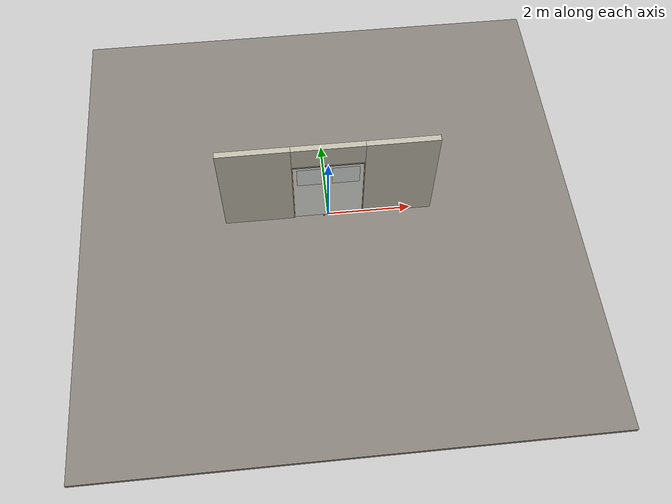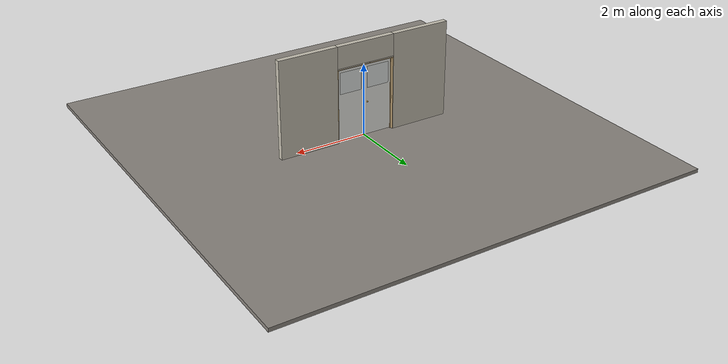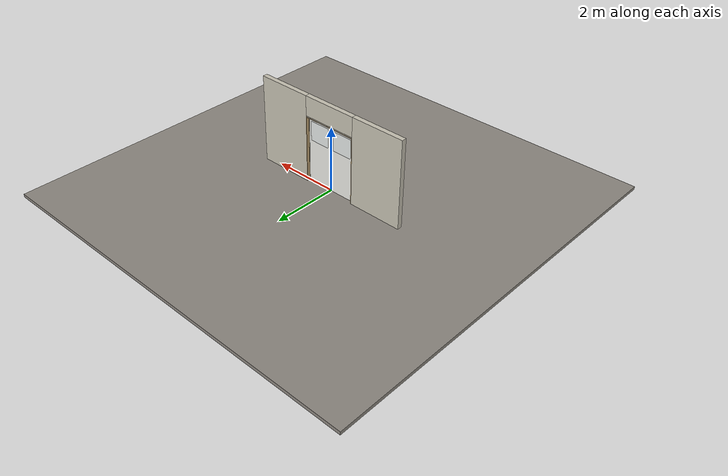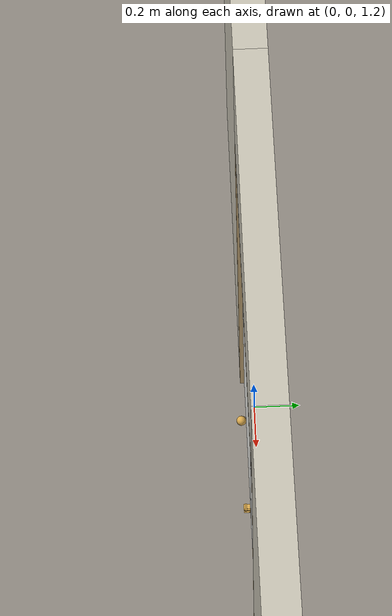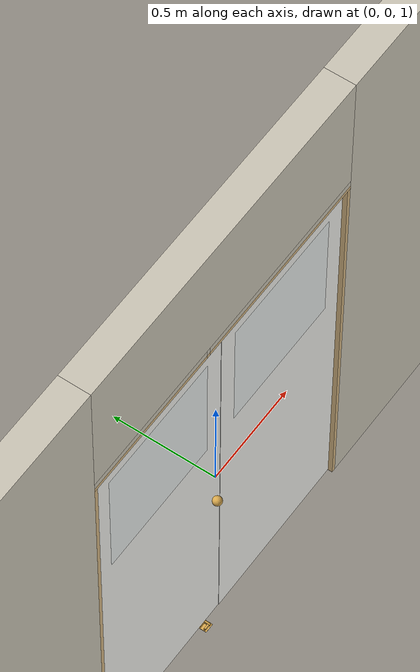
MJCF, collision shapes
<?xml version="1.0" ?>
<mujoco model="db0707_swing_double_minimal">
  <compiler angle="radian" meshdir="../../hardware" texturedir="../../textures" autolimits="true" inertiafromgeom="false"/>
  <option timestep="0.002" integrator="implicitfast" cone="elliptic" impratio="10" noslip_iterations="3">
    <flag multiccd="enable"/>
  </option>
  <size memory="16M"/>
  <default>
    <geom condim="4" solref="0.005 1" solimp="0.95 0.99 0.001"/>
    <joint solreflimit="0.005 1" solimplimit="0.95 0.99 0.001"/>
    <tendon solreflimit="0.005 1"/>
    <equality solref="0.002 1"/>
  </default>
  <visual>
    <headlight ambient="0.4 0.4 0.4" diffuse="0.7 0.7 0.7" specular="0.2 0.2 0.2"/>
    <quality shadowsize="4096"/>
    <map znear="0.01" zfar="60"/>
  </visual>
  <asset>
    <mesh name="knob_9525440cc3" file="knob_9525440cc3.obj"/>
    <material name="mat_floor" rgba="0.55 0.53 0.5 1" specular="0.2" shininess="0.15" reflectance="0"/>
    <material name="mat_wall" rgba="0.78 0.76 0.7 1" specular="0.2" shininess="0.1" reflectance="0"/>
    <material name="mat_leaf_a" rgba="0.93 0.93 0.91 1" specular="0.2" shininess="0.44" reflectance="0"/>
    <material name="mat_glass" rgba="0.85 0.92 0.95 0.25" specular="0.2" shininess="0.95" reflectance="0.1"/>
    <material name="mat_hinge" rgba="0.65 0.66 0.68 1" specular="0.74" shininess="0.5" reflectance="0.36"/>
    <material name="mat_op_brass" rgba="0.85 0.66 0.3 1" specular="0.8" shininess="0.75" reflectance="0.4"/>
    <material name="mat_trim" rgba="0.85 0.66 0.3 1" specular="0.8" shininess="0.75" reflectance="0.4"/>
    <material name="mat_stop" rgba="0.9 0.9 0.92 1" specular="0.8" shininess="0.9" reflectance="0.4"/>
    <material name="mat_leaf_b" rgba="0.93 0.93 0.91 1" specular="0.2" shininess="0.44" reflectance="0"/>
    <material name="mat_frame" rgba="0.82 0.7 0.5 1" specular="0.2" shininess="0.45" reflectance="0"/>
    <texture name="skybox" type="skybox" builtin="gradient" rgb1="0.6 0.7 0.85" rgb2="0.9 0.92 0.95" width="256" height="256"/>
  </asset>
  <worldbody>
    <light name="sun" pos="1.5 -2.5 4" dir="-0.3 0.5 -0.8" directional="true" diffuse="0.8 0.8 0.8" specular="0.3 0.3 0.3" castshadow="true"/>
    <light name="fill" pos="-1.5 2.5 3" dir="0.3 -0.5 -0.7" directional="true" diffuse="0.35 0.35 0.4" castshadow="false"/>
    <camera name="robot_view" pos="0 -2.511687 1.734312" xyaxes="1 0 0 0 0.26963 0.962964" fovy="52"/>
    <camera name="far_view" pos="0 2.572687 1.734312" xyaxes="-1 0 0 0 -0.26963 0.962964" fovy="52"/>
    <camera name="iso" pos="-1.932062 -2.104938 2.141063" xyaxes="0.741536 -0.670913 0 0.242917 0.268487 0.932151" fovy="46"/>
    <camera name="detail_handle" pos="0.1135 -0.857 1.245" xyaxes="0.97561 0.219512 0 -0.070934 0.315262 0.94635" fovy="38"/>
    <geom name="floor" type="box" size="6 6 0.05" pos="0 0 -0.05" material="mat_floor" group="0" contype="1" conaffinity="1" friction="0.8 0.005 0.0001" density="2400"/>
    <geom name="wall_left" type="box" size="0.83175 0.0725 1.35" pos="-1.66825 0.0305 1.35" material="mat_wall" group="0" contype="1" conaffinity="1" friction="0.6 0.005 0.0001" density="800"/>
    <geom name="wall_right" type="box" size="0.83175 0.0725 1.35" pos="1.66825 0.0305 1.35" material="mat_wall" group="0" contype="1" conaffinity="1" friction="0.6 0.005 0.0001" density="800"/>
    <geom name="wall_header" type="box" size="0.8365 0.0725 0.303" pos="0 0.0305 2.397" material="mat_wall" group="0" contype="1" conaffinity="1" friction="0.6 0.005 0.0001" density="800"/>
    <geom name="leaf_a_cremone_floor_strike_plate" type="box" size="0.023 0.023 0.00075" pos="-0.1115 -0.031 0.00075" material="mat_op_brass" group="0" contype="1" conaffinity="1" friction="0.6 0.005 0.0001" density="7850"/>
    <geom name="leaf_a_cremone_floor_strike_p" type="box" size="0.019 0.004 0.00575" pos="-0.1115 -0.019 0.00725" material="mat_op_brass" group="0" contype="1" conaffinity="1" friction="0.6 0.005 0.0001" density="7850"/>
    <geom name="leaf_a_cremone_floor_strike_n" type="box" size="0.019 0.004 0.00575" pos="-0.1115 -0.043 0.00725" material="mat_op_brass" group="0" contype="1" conaffinity="1" friction="0.6 0.005 0.0001" density="7850"/>
    <geom name="leaf_a_cremone_floor_strike_e" type="box" size="0.004 0.019 0.00575" pos="-0.0995 -0.031 0.00725" material="mat_op_brass" group="0" contype="1" conaffinity="1" friction="0.6 0.005 0.0001" density="7850"/>
    <geom name="jamb_l" type="box" size="0.0095 0.0725 1.0225" pos="-0.827 0.0305 1.0225" material="mat_frame" group="0" contype="1" conaffinity="1" friction="0.6 0.005 0.0001" density="300"/>
    <geom name="jamb_r" type="box" size="0.0095 0.0725 1.0225" pos="0.827 0.0305 1.0225" material="mat_frame" group="0" contype="1" conaffinity="1" friction="0.6 0.005 0.0001" density="300"/>
    <geom name="jamb_head_pwall_-111_n" type="box" size="0.01 0.00175 0.0095" pos="-0.1115 -0.04025 2.0545" material="mat_frame" group="0" contype="1" conaffinity="1" friction="0.6 0.005 0.0001" density="300"/>
    <geom name="jamb_head_pwall_-111_p" type="box" size="0.01 0.06325 0.0095" pos="-0.1115 0.03975 2.0545" material="mat_frame" group="0" contype="1" conaffinity="1" friction="0.6 0.005 0.0001" density="300"/>
    <geom name="jamb_head_0" type="box" size="0.3575 0.0725 0.0095" pos="-0.479 0.0305 2.0545" material="mat_frame" group="0" contype="1" conaffinity="1" friction="0.6 0.005 0.0001" density="300"/>
    <geom name="jamb_head_1" type="box" size="0.469 0.0725 0.0095" pos="0.3675 0.0305 2.0545" material="mat_frame" group="0" contype="1" conaffinity="1" friction="0.6 0.005 0.0001" density="300"/>
    <geom name="head_stud_pwall_-111_n" type="box" size="0.01 0.00175 0.015" pos="-0.1115 -0.04025 2.079" material="mat_wall" group="0" contype="1" conaffinity="1" friction="0.6 0.005 0.0001" density="500"/>
    <geom name="head_stud_pwall_-111_p" type="box" size="0.01 0.06325 0.015" pos="-0.1115 0.03975 2.079" material="mat_wall" group="0" contype="1" conaffinity="1" friction="0.6 0.005 0.0001" density="500"/>
    <geom name="head_stud_pback_-111" type="box" size="0.01 0.0075 0.0115" pos="-0.1115 -0.031 2.0825" material="mat_wall" group="0" contype="1" conaffinity="1" friction="0.6 0.005 0.0001" density="500"/>
    <geom name="head_stud_0" type="box" size="0.3575 0.0725 0.015" pos="-0.479 0.0305 2.079" material="mat_wall" group="0" contype="1" conaffinity="1" friction="0.6 0.005 0.0001" density="500"/>
    <geom name="head_stud_1" type="box" size="0.469 0.0725 0.015" pos="0.3675 0.0305 2.079" material="mat_wall" group="0" contype="1" conaffinity="1" friction="0.6 0.005 0.0001" density="500"/>
    <geom name="stop_l" type="box" size="0.015 0.006 1.0225" pos="-0.8025 0.0285 1.0225" material="mat_frame" group="0" contype="1" conaffinity="1" friction="0.6 0.005 0.0001" density="300"/>
    <geom name="stop_r" type="box" size="0.015 0.006 1.0225" pos="0.8025 0.0285 1.0225" material="mat_frame" group="0" contype="1" conaffinity="1" friction="0.6 0.005 0.0001" density="300"/>
    <geom name="stop_head" type="box" size="0.8175 0.006 0.015" pos="0 0.0285 2.03" material="mat_frame" group="0" contype="1" conaffinity="1" friction="0.6 0.005 0.0001" density="300"/>
    <site name="approach_point" pos="0 -1.5 0" quat="1 0 0 0" size="0.05" rgba="0.2 0.9 0.2 0.5" group="4"/>
    <site name="goal_point" pos="0 1.5 0" quat="1 0 0 0" size="0.05" rgba="0.2 0.9 0.2 0.5" group="4"/>
    <site name="door_plane_center" pos="0 0 1.0225" quat="1 0 0 0" size="0.02" rgba="0.2 0.9 0.2 0.5" group="4"/>
    <site name="approach_point_2" pos="0 -1.5 0" quat="1 0 0 0" size="0.05" rgba="0.2 0.9 0.2 0.5" group="4"/>
    <site name="goal_point_2" pos="0 1.5 0" quat="1 0 0 0" size="0.05" rgba="0.2 0.9 0.2 0.5" group="4"/>
    <site name="door_plane_center_2" pos="0 0 1.0225" quat="1 0 0 0" size="0.02" rgba="0.2 0.9 0.2 0.5" group="4"/>
    <site name="approach_point_3" pos="0 -1.5 0" quat="1 0 0 0" size="0.05" rgba="0.2 0.9 0.2 0.5" group="4"/>
    <site name="goal_point_3" pos="0 1.5 0" quat="1 0 0 0" size="0.05" rgba="0.2 0.9 0.2 0.5" group="4"/>
    <site name="door_plane_center_3" pos="0 0 1.0225" quat="1 0 0 0" size="0.02" rgba="0.2 0.9 0.2 0.5" group="4"/>
    <body name="leaf_a" pos="-0.8175 0 0">
      <inertial pos="0.4095 0 1.028751" mass="48.843401" quat="-0.5 -0.5 -0.5 0.5" diaginertia="2.697778561 16.699866379 19.381884326"/>
      <joint name="leaf_a_hinge" type="hinge" axis="0 0 -1" pos="0.003 -0.029 0" limited="true" range="0 1.658063" damping="0.210326" frictionloss="0.667839" armature="0.02"/>
      <geom name="leaf_a_slab" type="box" size="0.4065 0.022 1.0125" pos="0.4095 0 1.0285" material="mat_leaf_a" group="0" contype="1" conaffinity="1" friction="0.4 0.005 0.0001" density="1"/>
      <geom name="leaf_a_glass_0" type="box" size="0.3165 0.0228 0.297675" pos="0.4095 0 1.642075" material="mat_glass" group="1" contype="0" conaffinity="0" density="1"/>
      <site name="leaf_a_edge_mid" pos="0.816 0 1.0125" quat="1 0 0 0" size="0.02" rgba="0.2 0.9 0.2 0.5" group="4"/>
      <body name="leaf_a_handle" pos="0.751 0 0.965">
        <inertial pos="0 0 0" mass="0.679046" quat="-0.5 0.5 -0.5 0.5" diaginertia="0.000140287 0.002046641 0.002046641"/>
        <joint name="leaf_a_handle_hinge" type="hinge" axis="0 -1 0" limited="true" range="0 1.5708" damping="0.5" frictionloss="0.4" armature="0.01"/>
        <geom name="leaf_a_handle_cremone_knob_n" type="mesh" mesh="knob_9525440cc3" pos="0 -0.022 0" quat="0.707107 0.707107 0 0" material="mat_op_brass" group="1" contype="0" conaffinity="0" density="3000"/>
        <geom name="leaf_a_handle_cremone_col_n" type="sphere" size="0.022" pos="0 -0.057 0" material="mat_op_brass" group="0" contype="1" conaffinity="1" friction="0.6 0.005 0.0001" density="3000"/>
        <geom name="leaf_a_handle_cremone_knob_p" type="mesh" mesh="knob_9525440cc3" pos="0 0.022 0" quat="-0.707107 0.707107 0 0" material="mat_op_brass" group="1" contype="0" conaffinity="0" density="3000"/>
        <geom name="leaf_a_handle_cremone_col_p" type="sphere" size="0.022" pos="0 0.057 0" material="mat_op_brass" group="0" contype="1" conaffinity="1" friction="0.6 0.005 0.0001" density="3000"/>
        <site name="leaf_a_handle_grip_n" pos="0 -0.057 0" quat="1 0 0 0" size="0.012" rgba="0.2 0.9 0.2 0.5" group="4"/>
        <site name="leaf_a_handle_grip_p" pos="0 0.057 0" quat="1 0 0 0" size="0.012" rgba="0.2 0.9 0.2 0.5" group="4"/>
      </body>
    </body>
    <body name="leaf_b" pos="0.8175 0 0">
      <inertial pos="-0.4095 0 1.025252" mass="48.865919" quat="-0.5 0.5 0.5 0.5" diaginertia="2.699020812 16.82322404 19.50647697"/>
      <joint name="leaf_b_hinge" type="hinge" axis="0 0 1" pos="-0.003 -0.029 0" limited="true" range="0 0.001" damping="0.210326" frictionloss="0.667839" armature="0.02"/>
      <geom name="leaf_b_slab" type="box" size="0.4065 0.022 1.016" pos="-0.4095 0 1.025" material="mat_leaf_b" group="0" contype="1" conaffinity="1" friction="0.4 0.005 0.0001" density="1"/>
      <geom name="leaf_b_glass_0" type="box" size="0.3165 0.0228 0.298704" pos="-0.4095 0 1.640696" material="mat_glass" group="1" contype="0" conaffinity="0" density="1"/>
      <site name="leaf_b_edge_mid" pos="-0.816 0 1.016" quat="1 0 0 0" size="0.02" rgba="0.2 0.9 0.2 0.5" group="4"/>
    </body>
  </worldbody>
  <sensor>
    <jointpos name="leaf_a_hinge_pos" joint="leaf_a_hinge"/>
    <jointvel name="leaf_a_hinge_vel" joint="leaf_a_hinge"/>
    <jointpos name="leaf_a_handle_hinge_pos" joint="leaf_a_handle_hinge"/>
    <jointvel name="leaf_a_handle_hinge_vel" joint="leaf_a_handle_hinge"/>
    <jointpos name="leaf_b_hinge_pos" joint="leaf_b_hinge"/>
    <jointvel name="leaf_b_hinge_vel" joint="leaf_b_hinge"/>
  </sensor>
</mujoco>
